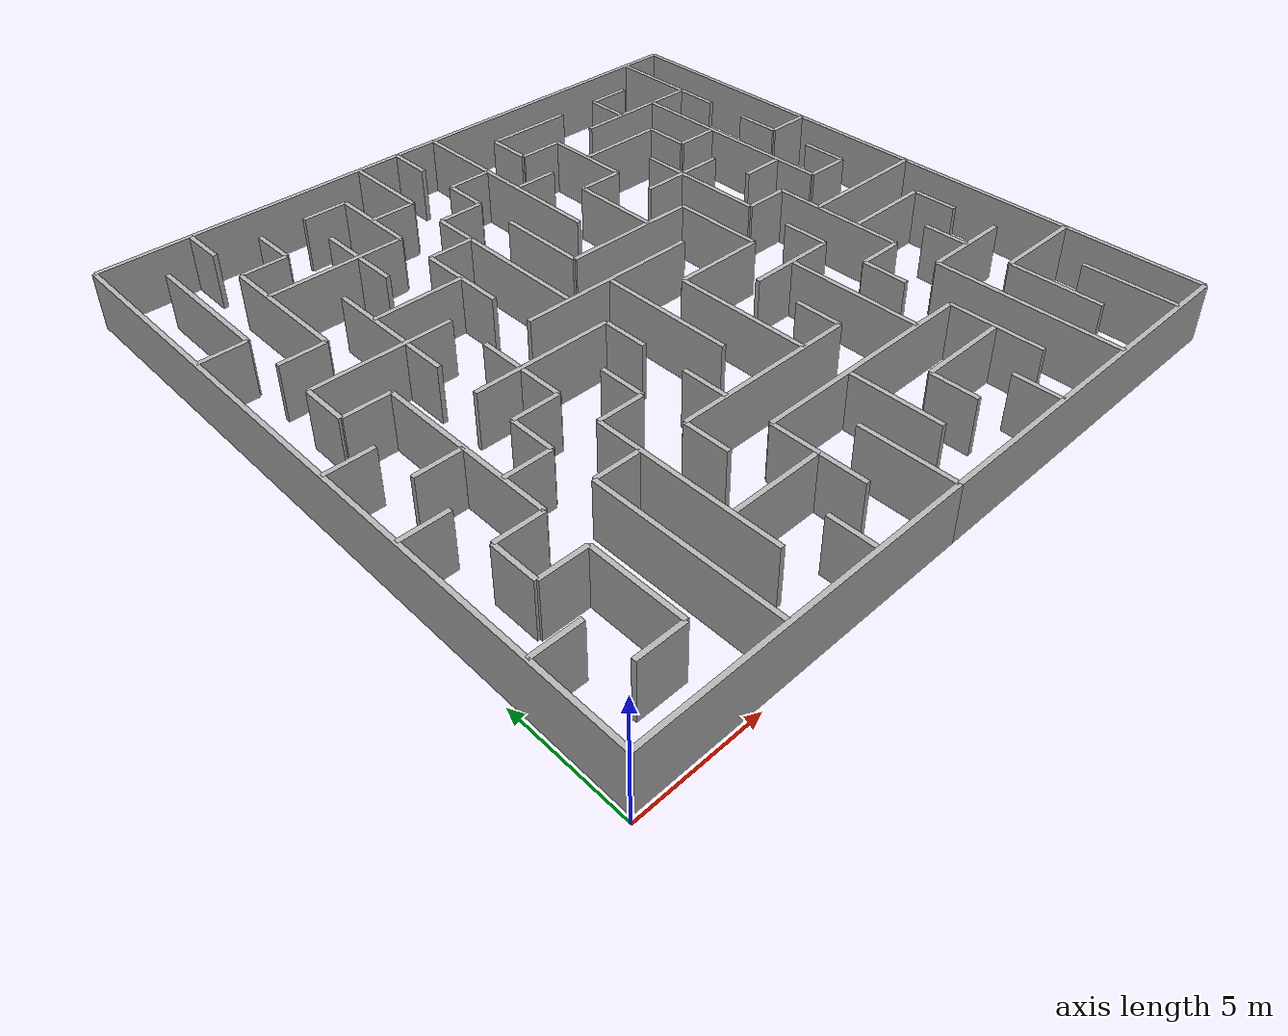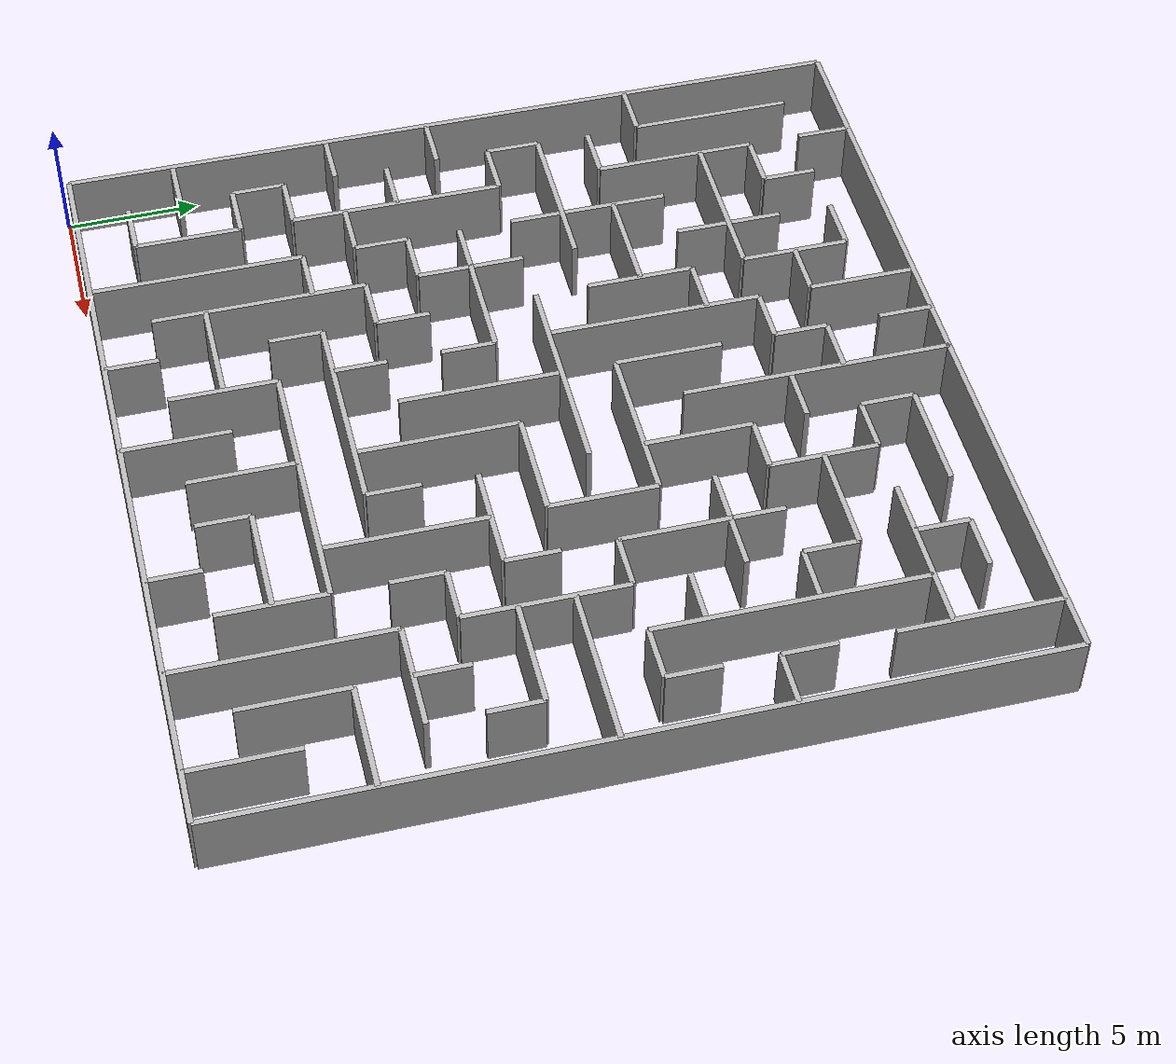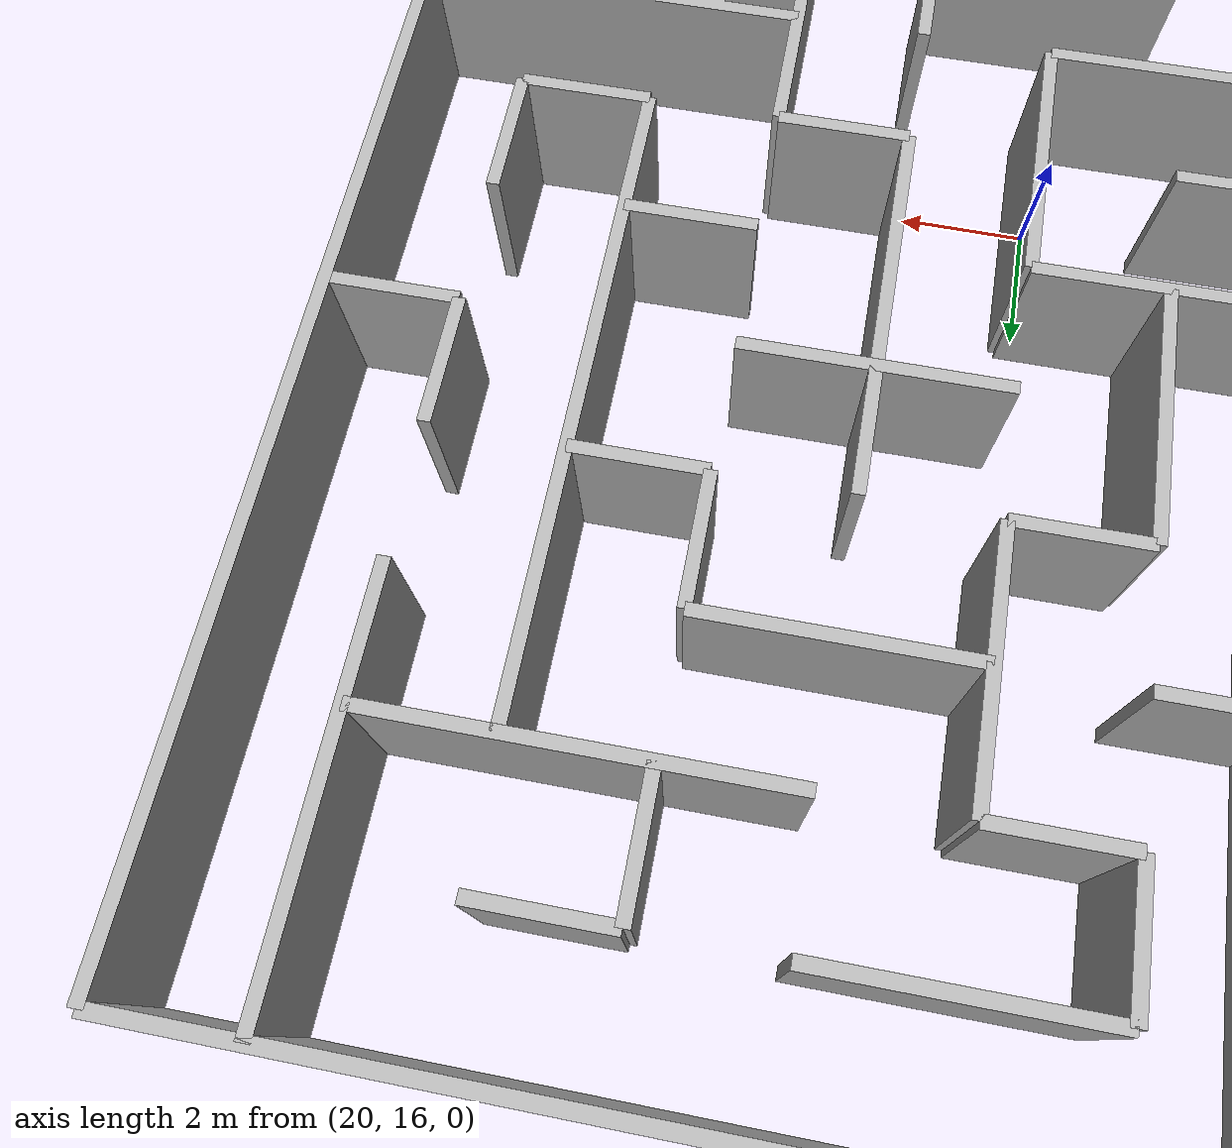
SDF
<?xml version="1.0" ?>
<sdf version="1.6">
  <model name="maze5">
    <static>true</static>
    <link name="wall_0">
      <pose>7.25 0.25 1.25 0 0 0.0</pose>
      <collision name="collision">
        <geometry>
          <box><size>14.0 0.2 2.5</size></box>
        </geometry>
      </collision>
      <visual name="visual">
        <geometry>
          <box><size>14.0 0.2 2.5</size></box>
        </geometry>
        <material>
          <ambient>0.7 0.7 0.7 1</ambient>
          <diffuse>0.7 0.7 0.7 1</diffuse>
        </material>
      </visual>
    </link>
    <link name="wall_1">
      <pose>22.25 0.25 1.25 0 0 0.0</pose>
      <collision name="collision">
        <geometry>
          <box><size>16.0 0.2 2.5</size></box>
        </geometry>
      </collision>
      <visual name="visual">
        <geometry>
          <box><size>16.0 0.2 2.5</size></box>
        </geometry>
        <material>
          <ambient>0.7 0.7 0.7 1</ambient>
          <diffuse>0.7 0.7 0.7 1</diffuse>
        </material>
      </visual>
    </link>
    <link name="wall_2">
      <pose>3.25 2.25 1.25 0 0 0.0</pose>
      <collision name="collision">
        <geometry>
          <box><size>2.0 0.2 2.5</size></box>
        </geometry>
      </collision>
      <visual name="visual">
        <geometry>
          <box><size>2.0 0.2 2.5</size></box>
        </geometry>
        <material>
          <ambient>0.7 0.7 0.7 1</ambient>
          <diffuse>0.7 0.7 0.7 1</diffuse>
        </material>
      </visual>
    </link>
    <link name="wall_3">
      <pose>1.25 4.25 1.25 0 0 0.0</pose>
      <collision name="collision">
        <geometry>
          <box><size>2.0 0.2 2.5</size></box>
        </geometry>
      </collision>
      <visual name="visual">
        <geometry>
          <box><size>2.0 0.2 2.5</size></box>
        </geometry>
        <material>
          <ambient>0.7 0.7 0.7 1</ambient>
          <diffuse>0.7 0.7 0.7 1</diffuse>
        </material>
      </visual>
    </link>
    <link name="wall_4">
      <pose>10.25 4.25 1.25 0 0 0.0</pose>
      <collision name="collision">
        <geometry>
          <box><size>4.0 0.2 2.5</size></box>
        </geometry>
      </collision>
      <visual name="visual">
        <geometry>
          <box><size>4.0 0.2 2.5</size></box>
        </geometry>
        <material>
          <ambient>0.7 0.7 0.7 1</ambient>
          <diffuse>0.7 0.7 0.7 1</diffuse>
        </material>
      </visual>
    </link>
    <link name="wall_5">
      <pose>20.25 4.25 1.25 0 0 0.0</pose>
      <collision name="collision">
        <geometry>
          <box><size>4.0 0.2 2.5</size></box>
        </geometry>
      </collision>
      <visual name="visual">
        <geometry>
          <box><size>4.0 0.2 2.5</size></box>
        </geometry>
        <material>
          <ambient>0.7 0.7 0.7 1</ambient>
          <diffuse>0.7 0.7 0.7 1</diffuse>
        </material>
      </visual>
    </link>
    <link name="wall_6">
      <pose>3.25 6.25 1.25 0 0 0.0</pose>
      <collision name="collision">
        <geometry>
          <box><size>2.0 0.2 2.5</size></box>
        </geometry>
      </collision>
      <visual name="visual">
        <geometry>
          <box><size>2.0 0.2 2.5</size></box>
        </geometry>
        <material>
          <ambient>0.7 0.7 0.7 1</ambient>
          <diffuse>0.7 0.7 0.7 1</diffuse>
        </material>
      </visual>
    </link>
    <link name="wall_7">
      <pose>17.25 6.25 1.25 0 0 0.0</pose>
      <collision name="collision">
        <geometry>
          <box><size>10.0 0.2 2.5</size></box>
        </geometry>
      </collision>
      <visual name="visual">
        <geometry>
          <box><size>10.0 0.2 2.5</size></box>
        </geometry>
        <material>
          <ambient>0.7 0.7 0.7 1</ambient>
          <diffuse>0.7 0.7 0.7 1</diffuse>
        </material>
      </visual>
    </link>
    <link name="wall_8">
      <pose>28.25 6.25 1.25 0 0 0.0</pose>
      <collision name="collision">
        <geometry>
          <box><size>4.0 0.2 2.5</size></box>
        </geometry>
      </collision>
      <visual name="visual">
        <geometry>
          <box><size>4.0 0.2 2.5</size></box>
        </geometry>
        <material>
          <ambient>0.7 0.7 0.7 1</ambient>
          <diffuse>0.7 0.7 0.7 1</diffuse>
        </material>
      </visual>
    </link>
    <link name="wall_9">
      <pose>3.25 8.25 1.25 0 0 0.0</pose>
      <collision name="collision">
        <geometry>
          <box><size>2.0 0.2 2.5</size></box>
        </geometry>
      </collision>
      <visual name="visual">
        <geometry>
          <box><size>2.0 0.2 2.5</size></box>
        </geometry>
        <material>
          <ambient>0.7 0.7 0.7 1</ambient>
          <diffuse>0.7 0.7 0.7 1</diffuse>
        </material>
      </visual>
    </link>
    <link name="wall_10">
      <pose>7.25 8.25 1.25 0 0 0.0</pose>
      <collision name="collision">
        <geometry>
          <box><size>2.0 0.2 2.5</size></box>
        </geometry>
      </collision>
      <visual name="visual">
        <geometry>
          <box><size>2.0 0.2 2.5</size></box>
        </geometry>
        <material>
          <ambient>0.7 0.7 0.7 1</ambient>
          <diffuse>0.7 0.7 0.7 1</diffuse>
        </material>
      </visual>
    </link>
    <link name="wall_11">
      <pose>14.25 8.25 1.25 0 0 0.0</pose>
      <collision name="collision">
        <geometry>
          <box><size>8.0 0.2 2.5</size></box>
        </geometry>
      </collision>
      <visual name="visual">
        <geometry>
          <box><size>8.0 0.2 2.5</size></box>
        </geometry>
        <material>
          <ambient>0.7 0.7 0.7 1</ambient>
          <diffuse>0.7 0.7 0.7 1</diffuse>
        </material>
      </visual>
    </link>
    <link name="wall_12">
      <pose>26.25 8.25 1.25 0 0 0.0</pose>
      <collision name="collision">
        <geometry>
          <box><size>4.0 0.2 2.5</size></box>
        </geometry>
      </collision>
      <visual name="visual">
        <geometry>
          <box><size>4.0 0.2 2.5</size></box>
        </geometry>
        <material>
          <ambient>0.7 0.7 0.7 1</ambient>
          <diffuse>0.7 0.7 0.7 1</diffuse>
        </material>
      </visual>
    </link>
    <link name="wall_13">
      <pose>1.25 10.25 1.25 0 0 0.0</pose>
      <collision name="collision">
        <geometry>
          <box><size>2.0 0.2 2.5</size></box>
        </geometry>
      </collision>
      <visual name="visual">
        <geometry>
          <box><size>2.0 0.2 2.5</size></box>
        </geometry>
        <material>
          <ambient>0.7 0.7 0.7 1</ambient>
          <diffuse>0.7 0.7 0.7 1</diffuse>
        </material>
      </visual>
    </link>
    <link name="wall_14">
      <pose>5.25 10.25 1.25 0 0 0.0</pose>
      <collision name="collision">
        <geometry>
          <box><size>2.0 0.2 2.5</size></box>
        </geometry>
      </collision>
      <visual name="visual">
        <geometry>
          <box><size>2.0 0.2 2.5</size></box>
        </geometry>
        <material>
          <ambient>0.7 0.7 0.7 1</ambient>
          <diffuse>0.7 0.7 0.7 1</diffuse>
        </material>
      </visual>
    </link>
    <link name="wall_15">
      <pose>9.25 10.25 1.25 0 0 0.0</pose>
      <collision name="collision">
        <geometry>
          <box><size>2.0 0.2 2.5</size></box>
        </geometry>
      </collision>
      <visual name="visual">
        <geometry>
          <box><size>2.0 0.2 2.5</size></box>
        </geometry>
        <material>
          <ambient>0.7 0.7 0.7 1</ambient>
          <diffuse>0.7 0.7 0.7 1</diffuse>
        </material>
      </visual>
    </link>
    <link name="wall_16">
      <pose>23.25 10.25 1.25 0 0 0.0</pose>
      <collision name="collision">
        <geometry>
          <box><size>2.0 0.2 2.5</size></box>
        </geometry>
      </collision>
      <visual name="visual">
        <geometry>
          <box><size>2.0 0.2 2.5</size></box>
        </geometry>
        <material>
          <ambient>0.7 0.7 0.7 1</ambient>
          <diffuse>0.7 0.7 0.7 1</diffuse>
        </material>
      </visual>
    </link>
    <link name="wall_17">
      <pose>3.25 12.25 1.25 0 0 0.0</pose>
      <collision name="collision">
        <geometry>
          <box><size>2.0 0.2 2.5</size></box>
        </geometry>
      </collision>
      <visual name="visual">
        <geometry>
          <box><size>2.0 0.2 2.5</size></box>
        </geometry>
        <material>
          <ambient>0.7 0.7 0.7 1</ambient>
          <diffuse>0.7 0.7 0.7 1</diffuse>
        </material>
      </visual>
    </link>
    <link name="wall_18">
      <pose>7.25 12.25 1.25 0 0 0.0</pose>
      <collision name="collision">
        <geometry>
          <box><size>2.0 0.2 2.5</size></box>
        </geometry>
      </collision>
      <visual name="visual">
        <geometry>
          <box><size>2.0 0.2 2.5</size></box>
        </geometry>
        <material>
          <ambient>0.7 0.7 0.7 1</ambient>
          <diffuse>0.7 0.7 0.7 1</diffuse>
        </material>
      </visual>
    </link>
    <link name="wall_19">
      <pose>20.25 12.25 1.25 0 0 0.0</pose>
      <collision name="collision">
        <geometry>
          <box><size>4.0 0.2 2.5</size></box>
        </geometry>
      </collision>
      <visual name="visual">
        <geometry>
          <box><size>4.0 0.2 2.5</size></box>
        </geometry>
        <material>
          <ambient>0.7 0.7 0.7 1</ambient>
          <diffuse>0.7 0.7 0.7 1</diffuse>
        </material>
      </visual>
    </link>
    <link name="wall_20">
      <pose>26.25 12.25 1.25 0 0 0.0</pose>
      <collision name="collision">
        <geometry>
          <box><size>4.0 0.2 2.5</size></box>
        </geometry>
      </collision>
      <visual name="visual">
        <geometry>
          <box><size>4.0 0.2 2.5</size></box>
        </geometry>
        <material>
          <ambient>0.7 0.7 0.7 1</ambient>
          <diffuse>0.7 0.7 0.7 1</diffuse>
        </material>
      </visual>
    </link>
    <link name="wall_21">
      <pose>1.25 14.25 1.25 0 0 0.0</pose>
      <collision name="collision">
        <geometry>
          <box><size>2.0 0.2 2.5</size></box>
        </geometry>
      </collision>
      <visual name="visual">
        <geometry>
          <box><size>2.0 0.2 2.5</size></box>
        </geometry>
        <material>
          <ambient>0.7 0.7 0.7 1</ambient>
          <diffuse>0.7 0.7 0.7 1</diffuse>
        </material>
      </visual>
    </link>
    <link name="wall_22">
      <pose>9.25 14.25 1.25 0 0 0.0</pose>
      <collision name="collision">
        <geometry>
          <box><size>6.0 0.2 2.5</size></box>
        </geometry>
      </collision>
      <visual name="visual">
        <geometry>
          <box><size>6.0 0.2 2.5</size></box>
        </geometry>
        <material>
          <ambient>0.7 0.7 0.7 1</ambient>
          <diffuse>0.7 0.7 0.7 1</diffuse>
        </material>
      </visual>
    </link>
    <link name="wall_23">
      <pose>18.25 14.25 1.25 0 0 0.0</pose>
      <collision name="collision">
        <geometry>
          <box><size>4.0 0.2 2.5</size></box>
        </geometry>
      </collision>
      <visual name="visual">
        <geometry>
          <box><size>4.0 0.2 2.5</size></box>
        </geometry>
        <material>
          <ambient>0.7 0.7 0.7 1</ambient>
          <diffuse>0.7 0.7 0.7 1</diffuse>
        </material>
      </visual>
    </link>
    <link name="wall_24">
      <pose>27.25 14.25 1.25 0 0 0.0</pose>
      <collision name="collision">
        <geometry>
          <box><size>6.0 0.2 2.5</size></box>
        </geometry>
      </collision>
      <visual name="visual">
        <geometry>
          <box><size>6.0 0.2 2.5</size></box>
        </geometry>
        <material>
          <ambient>0.7 0.7 0.7 1</ambient>
          <diffuse>0.7 0.7 0.7 1</diffuse>
        </material>
      </visual>
    </link>
    <link name="wall_25">
      <pose>3.25 16.25 1.25 0 0 0.0</pose>
      <collision name="collision">
        <geometry>
          <box><size>2.0 0.2 2.5</size></box>
        </geometry>
      </collision>
      <visual name="visual">
        <geometry>
          <box><size>2.0 0.2 2.5</size></box>
        </geometry>
        <material>
          <ambient>0.7 0.7 0.7 1</ambient>
          <diffuse>0.7 0.7 0.7 1</diffuse>
        </material>
      </visual>
    </link>
    <link name="wall_26">
      <pose>14.25 16.25 1.25 0 0 0.0</pose>
      <collision name="collision">
        <geometry>
          <box><size>8.0 0.2 2.5</size></box>
        </geometry>
      </collision>
      <visual name="visual">
        <geometry>
          <box><size>8.0 0.2 2.5</size></box>
        </geometry>
        <material>
          <ambient>0.7 0.7 0.7 1</ambient>
          <diffuse>0.7 0.7 0.7 1</diffuse>
        </material>
      </visual>
    </link>
    <link name="wall_27">
      <pose>23.25 16.25 1.25 0 0 0.0</pose>
      <collision name="collision">
        <geometry>
          <box><size>2.0 0.2 2.5</size></box>
        </geometry>
      </collision>
      <visual name="visual">
        <geometry>
          <box><size>2.0 0.2 2.5</size></box>
        </geometry>
        <material>
          <ambient>0.7 0.7 0.7 1</ambient>
          <diffuse>0.7 0.7 0.7 1</diffuse>
        </material>
      </visual>
    </link>
    <link name="wall_28">
      <pose>27.25 16.25 1.25 0 0 0.0</pose>
      <collision name="collision">
        <geometry>
          <box><size>2.0 0.2 2.5</size></box>
        </geometry>
      </collision>
      <visual name="visual">
        <geometry>
          <box><size>2.0 0.2 2.5</size></box>
        </geometry>
        <material>
          <ambient>0.7 0.7 0.7 1</ambient>
          <diffuse>0.7 0.7 0.7 1</diffuse>
        </material>
      </visual>
    </link>
    <link name="wall_29">
      <pose>5.25 18.25 1.25 0 0 0.0</pose>
      <collision name="collision">
        <geometry>
          <box><size>6.0 0.2 2.5</size></box>
        </geometry>
      </collision>
      <visual name="visual">
        <geometry>
          <box><size>6.0 0.2 2.5</size></box>
        </geometry>
        <material>
          <ambient>0.7 0.7 0.7 1</ambient>
          <diffuse>0.7 0.7 0.7 1</diffuse>
        </material>
      </visual>
    </link>
    <link name="wall_30">
      <pose>17.25 18.25 1.25 0 0 0.0</pose>
      <collision name="collision">
        <geometry>
          <box><size>6.0 0.2 2.5</size></box>
        </geometry>
      </collision>
      <visual name="visual">
        <geometry>
          <box><size>6.0 0.2 2.5</size></box>
        </geometry>
        <material>
          <ambient>0.7 0.7 0.7 1</ambient>
          <diffuse>0.7 0.7 0.7 1</diffuse>
        </material>
      </visual>
    </link>
    <link name="wall_31">
      <pose>25.25 18.25 1.25 0 0 0.0</pose>
      <collision name="collision">
        <geometry>
          <box><size>2.0 0.2 2.5</size></box>
        </geometry>
      </collision>
      <visual name="visual">
        <geometry>
          <box><size>2.0 0.2 2.5</size></box>
        </geometry>
        <material>
          <ambient>0.7 0.7 0.7 1</ambient>
          <diffuse>0.7 0.7 0.7 1</diffuse>
        </material>
      </visual>
    </link>
    <link name="wall_32">
      <pose>3.25 20.25 1.25 0 0 0.0</pose>
      <collision name="collision">
        <geometry>
          <box><size>2.0 0.2 2.5</size></box>
        </geometry>
      </collision>
      <visual name="visual">
        <geometry>
          <box><size>2.0 0.2 2.5</size></box>
        </geometry>
        <material>
          <ambient>0.7 0.7 0.7 1</ambient>
          <diffuse>0.7 0.7 0.7 1</diffuse>
        </material>
      </visual>
    </link>
    <link name="wall_33">
      <pose>8.25 20.25 1.25 0 0 0.0</pose>
      <collision name="collision">
        <geometry>
          <box><size>4.0 0.2 2.5</size></box>
        </geometry>
      </collision>
      <visual name="visual">
        <geometry>
          <box><size>4.0 0.2 2.5</size></box>
        </geometry>
        <material>
          <ambient>0.7 0.7 0.7 1</ambient>
          <diffuse>0.7 0.7 0.7 1</diffuse>
        </material>
      </visual>
    </link>
    <link name="wall_34">
      <pose>22.25 20.25 1.25 0 0 0.0</pose>
      <collision name="collision">
        <geometry>
          <box><size>4.0 0.2 2.5</size></box>
        </geometry>
      </collision>
      <visual name="visual">
        <geometry>
          <box><size>4.0 0.2 2.5</size></box>
        </geometry>
        <material>
          <ambient>0.7 0.7 0.7 1</ambient>
          <diffuse>0.7 0.7 0.7 1</diffuse>
        </material>
      </visual>
    </link>
    <link name="wall_35">
      <pose>29.25 20.25 1.25 0 0 0.0</pose>
      <collision name="collision">
        <geometry>
          <box><size>2.0 0.2 2.5</size></box>
        </geometry>
      </collision>
      <visual name="visual">
        <geometry>
          <box><size>2.0 0.2 2.5</size></box>
        </geometry>
        <material>
          <ambient>0.7 0.7 0.7 1</ambient>
          <diffuse>0.7 0.7 0.7 1</diffuse>
        </material>
      </visual>
    </link>
    <link name="wall_36">
      <pose>1.25 22.25 1.25 0 0 0.0</pose>
      <collision name="collision">
        <geometry>
          <box><size>2.0 0.2 2.5</size></box>
        </geometry>
      </collision>
      <visual name="visual">
        <geometry>
          <box><size>2.0 0.2 2.5</size></box>
        </geometry>
        <material>
          <ambient>0.7 0.7 0.7 1</ambient>
          <diffuse>0.7 0.7 0.7 1</diffuse>
        </material>
      </visual>
    </link>
    <link name="wall_37">
      <pose>11.25 22.25 1.25 0 0 0.0</pose>
      <collision name="collision">
        <geometry>
          <box><size>2.0 0.2 2.5</size></box>
        </geometry>
      </collision>
      <visual name="visual">
        <geometry>
          <box><size>2.0 0.2 2.5</size></box>
        </geometry>
        <material>
          <ambient>0.7 0.7 0.7 1</ambient>
          <diffuse>0.7 0.7 0.7 1</diffuse>
        </material>
      </visual>
    </link>
    <link name="wall_38">
      <pose>19.25 22.25 1.25 0 0 0.0</pose>
      <collision name="collision">
        <geometry>
          <box><size>2.0 0.2 2.5</size></box>
        </geometry>
      </collision>
      <visual name="visual">
        <geometry>
          <box><size>2.0 0.2 2.5</size></box>
        </geometry>
        <material>
          <ambient>0.7 0.7 0.7 1</ambient>
          <diffuse>0.7 0.7 0.7 1</diffuse>
        </material>
      </visual>
    </link>
    <link name="wall_39">
      <pose>25.25 22.25 1.25 0 0 0.0</pose>
      <collision name="collision">
        <geometry>
          <box><size>2.0 0.2 2.5</size></box>
        </geometry>
      </collision>
      <visual name="visual">
        <geometry>
          <box><size>2.0 0.2 2.5</size></box>
        </geometry>
        <material>
          <ambient>0.7 0.7 0.7 1</ambient>
          <diffuse>0.7 0.7 0.7 1</diffuse>
        </material>
      </visual>
    </link>
    <link name="wall_40">
      <pose>7.25 24.25 1.25 0 0 0.0</pose>
      <collision name="collision">
        <geometry>
          <box><size>6.0 0.2 2.5</size></box>
        </geometry>
      </collision>
      <visual name="visual">
        <geometry>
          <box><size>6.0 0.2 2.5</size></box>
        </geometry>
        <material>
          <ambient>0.7 0.7 0.7 1</ambient>
          <diffuse>0.7 0.7 0.7 1</diffuse>
        </material>
      </visual>
    </link>
    <link name="wall_41">
      <pose>13.25 24.25 1.25 0 0 0.0</pose>
      <collision name="collision">
        <geometry>
          <box><size>2.0 0.2 2.5</size></box>
        </geometry>
      </collision>
      <visual name="visual">
        <geometry>
          <box><size>2.0 0.2 2.5</size></box>
        </geometry>
        <material>
          <ambient>0.7 0.7 0.7 1</ambient>
          <diffuse>0.7 0.7 0.7 1</diffuse>
        </material>
      </visual>
    </link>
    <link name="wall_42">
      <pose>17.25 24.25 1.25 0 0 0.0</pose>
      <collision name="collision">
        <geometry>
          <box><size>2.0 0.2 2.5</size></box>
        </geometry>
      </collision>
      <visual name="visual">
        <geometry>
          <box><size>2.0 0.2 2.5</size></box>
        </geometry>
        <material>
          <ambient>0.7 0.7 0.7 1</ambient>
          <diffuse>0.7 0.7 0.7 1</diffuse>
        </material>
      </visual>
    </link>
    <link name="wall_43">
      <pose>22.25 24.25 1.25 0 0 0.0</pose>
      <collision name="collision">
        <geometry>
          <box><size>4.0 0.2 2.5</size></box>
        </geometry>
      </collision>
      <visual name="visual">
        <geometry>
          <box><size>4.0 0.2 2.5</size></box>
        </geometry>
        <material>
          <ambient>0.7 0.7 0.7 1</ambient>
          <diffuse>0.7 0.7 0.7 1</diffuse>
        </material>
      </visual>
    </link>
    <link name="wall_44">
      <pose>5.25 26.25 1.25 0 0 0.0</pose>
      <collision name="collision">
        <geometry>
          <box><size>2.0 0.2 2.5</size></box>
        </geometry>
      </collision>
      <visual name="visual">
        <geometry>
          <box><size>2.0 0.2 2.5</size></box>
        </geometry>
        <material>
          <ambient>0.7 0.7 0.7 1</ambient>
          <diffuse>0.7 0.7 0.7 1</diffuse>
        </material>
      </visual>
    </link>
    <link name="wall_45">
      <pose>11.25 26.25 1.25 0 0 0.0</pose>
      <collision name="collision">
        <geometry>
          <box><size>2.0 0.2 2.5</size></box>
        </geometry>
      </collision>
      <visual name="visual">
        <geometry>
          <box><size>2.0 0.2 2.5</size></box>
        </geometry>
        <material>
          <ambient>0.7 0.7 0.7 1</ambient>
          <diffuse>0.7 0.7 0.7 1</diffuse>
        </material>
      </visual>
    </link>
    <link name="wall_46">
      <pose>15.25 26.25 1.25 0 0 0.0</pose>
      <collision name="collision">
        <geometry>
          <box><size>2.0 0.2 2.5</size></box>
        </geometry>
      </collision>
      <visual name="visual">
        <geometry>
          <box><size>2.0 0.2 2.5</size></box>
        </geometry>
        <material>
          <ambient>0.7 0.7 0.7 1</ambient>
          <diffuse>0.7 0.7 0.7 1</diffuse>
        </material>
      </visual>
    </link>
    <link name="wall_47">
      <pose>19.25 26.25 1.25 0 0 0.0</pose>
      <collision name="collision">
        <geometry>
          <box><size>2.0 0.2 2.5</size></box>
        </geometry>
      </collision>
      <visual name="visual">
        <geometry>
          <box><size>2.0 0.2 2.5</size></box>
        </geometry>
        <material>
          <ambient>0.7 0.7 0.7 1</ambient>
          <diffuse>0.7 0.7 0.7 1</diffuse>
        </material>
      </visual>
    </link>
    <link name="wall_48">
      <pose>25.25 26.25 1.25 0 0 0.0</pose>
      <collision name="collision">
        <geometry>
          <box><size>6.0 0.2 2.5</size></box>
        </geometry>
      </collision>
      <visual name="visual">
        <geometry>
          <box><size>6.0 0.2 2.5</size></box>
        </geometry>
        <material>
          <ambient>0.7 0.7 0.7 1</ambient>
          <diffuse>0.7 0.7 0.7 1</diffuse>
        </material>
      </visual>
    </link>
    <link name="wall_49">
      <pose>9.25 28.25 1.25 0 0 0.0</pose>
      <collision name="collision">
        <geometry>
          <box><size>2.0 0.2 2.5</size></box>
        </geometry>
      </collision>
      <visual name="visual">
        <geometry>
          <box><size>2.0 0.2 2.5</size></box>
        </geometry>
        <material>
          <ambient>0.7 0.7 0.7 1</ambient>
          <diffuse>0.7 0.7 0.7 1</diffuse>
        </material>
      </visual>
    </link>
    <link name="wall_50">
      <pose>20.25 28.25 1.25 0 0 0.0</pose>
      <collision name="collision">
        <geometry>
          <box><size>4.0 0.2 2.5</size></box>
        </geometry>
      </collision>
      <visual name="visual">
        <geometry>
          <box><size>4.0 0.2 2.5</size></box>
        </geometry>
        <material>
          <ambient>0.7 0.7 0.7 1</ambient>
          <diffuse>0.7 0.7 0.7 1</diffuse>
        </material>
      </visual>
    </link>
    <link name="wall_51">
      <pose>25.25 28.25 1.25 0 0 0.0</pose>
      <collision name="collision">
        <geometry>
          <box><size>2.0 0.2 2.5</size></box>
        </geometry>
      </collision>
      <visual name="visual">
        <geometry>
          <box><size>2.0 0.2 2.5</size></box>
        </geometry>
        <material>
          <ambient>0.7 0.7 0.7 1</ambient>
          <diffuse>0.7 0.7 0.7 1</diffuse>
        </material>
      </visual>
    </link>
    <link name="wall_52">
      <pose>8.25 30.25 1.25 0 0 0.0</pose>
      <collision name="collision">
        <geometry>
          <box><size>16.0 0.2 2.5</size></box>
        </geometry>
      </collision>
      <visual name="visual">
        <geometry>
          <box><size>16.0 0.2 2.5</size></box>
        </geometry>
        <material>
          <ambient>0.7 0.7 0.7 1</ambient>
          <diffuse>0.7 0.7 0.7 1</diffuse>
        </material>
      </visual>
    </link>
    <link name="wall_53">
      <pose>23.25 30.25 1.25 0 0 0.0</pose>
      <collision name="collision">
        <geometry>
          <box><size>14.0 0.2 2.5</size></box>
        </geometry>
      </collision>
      <visual name="visual">
        <geometry>
          <box><size>14.0 0.2 2.5</size></box>
        </geometry>
        <material>
          <ambient>0.7 0.7 0.7 1</ambient>
          <diffuse>0.7 0.7 0.7 1</diffuse>
        </material>
      </visual>
    </link>
    <link name="wall_54">
      <pose>0.25 15.25 1.25 0 0 1.5707963267948966</pose>
      <collision name="collision">
        <geometry>
          <box><size>30.0 0.2 2.5</size></box>
        </geometry>
      </collision>
      <visual name="visual">
        <geometry>
          <box><size>30.0 0.2 2.5</size></box>
        </geometry>
        <material>
          <ambient>0.7 0.7 0.7 1</ambient>
          <diffuse>0.7 0.7 0.7 1</diffuse>
        </material>
      </visual>
    </link>
    <link name="wall_55">
      <pose>2.25 7.25 1.25 0 0 1.5707963267948966</pose>
      <collision name="collision">
        <geometry>
          <box><size>2.0 0.2 2.5</size></box>
        </geometry>
      </collision>
      <visual name="visual">
        <geometry>
          <box><size>2.0 0.2 2.5</size></box>
        </geometry>
        <material>
          <ambient>0.7 0.7 0.7 1</ambient>
          <diffuse>0.7 0.7 0.7 1</diffuse>
        </material>
      </visual>
    </link>
    <link name="wall_56">
      <pose>2.25 17.25 1.25 0 0 1.5707963267948966</pose>
      <collision name="collision">
        <geometry>
          <box><size>2.0 0.2 2.5</size></box>
        </geometry>
      </collision>
      <visual name="visual">
        <geometry>
          <box><size>2.0 0.2 2.5</size></box>
        </geometry>
        <material>
          <ambient>0.7 0.7 0.7 1</ambient>
          <diffuse>0.7 0.7 0.7 1</diffuse>
        </material>
      </visual>
    </link>
    <link name="wall_57">
      <pose>2.25 25.25 1.25 0 0 1.5707963267948966</pose>
      <collision name="collision">
        <geometry>
          <box><size>6.0 0.2 2.5</size></box>
        </geometry>
      </collision>
      <visual name="visual">
        <geometry>
          <box><size>6.0 0.2 2.5</size></box>
        </geometry>
        <material>
          <ambient>0.7 0.7 0.7 1</ambient>
          <diffuse>0.7 0.7 0.7 1</diffuse>
        </material>
      </visual>
    </link>
    <link name="wall_58">
      <pose>4.25 4.25 1.25 0 0 1.5707963267948966</pose>
      <collision name="collision">
        <geometry>
          <box><size>4.0 0.2 2.5</size></box>
        </geometry>
      </collision>
      <visual name="visual">
        <geometry>
          <box><size>4.0 0.2 2.5</size></box>
        </geometry>
        <material>
          <ambient>0.7 0.7 0.7 1</ambient>
          <diffuse>0.7 0.7 0.7 1</diffuse>
        </material>
      </visual>
    </link>
    <link name="wall_59">
      <pose>4.25 12.25 1.25 0 0 1.5707963267948966</pose>
      <collision name="collision">
        <geometry>
          <box><size>8.0 0.2 2.5</size></box>
        </geometry>
      </collision>
      <visual name="visual">
        <geometry>
          <box><size>8.0 0.2 2.5</size></box>
        </geometry>
        <material>
          <ambient>0.7 0.7 0.7 1</ambient>
          <diffuse>0.7 0.7 0.7 1</diffuse>
        </material>
      </visual>
    </link>
    <link name="wall_60">
      <pose>4.25 23.25 1.25 0 0 1.5707963267948966</pose>
      <collision name="collision">
        <geometry>
          <box><size>6.0 0.2 2.5</size></box>
        </geometry>
      </collision>
      <visual name="visual">
        <geometry>
          <box><size>6.0 0.2 2.5</size></box>
        </geometry>
        <material>
          <ambient>0.7 0.7 0.7 1</ambient>
          <diffuse>0.7 0.7 0.7 1</diffuse>
        </material>
      </visual>
    </link>
    <link name="wall_61">
      <pose>4.25 29.25 1.25 0 0 1.5707963267948966</pose>
      <collision name="collision">
        <geometry>
          <box><size>2.0 0.2 2.5</size></box>
        </geometry>
      </collision>
      <visual name="visual">
        <geometry>
          <box><size>2.0 0.2 2.5</size></box>
        </geometry>
        <material>
          <ambient>0.7 0.7 0.7 1</ambient>
          <diffuse>0.7 0.7 0.7 1</diffuse>
        </material>
      </visual>
    </link>
    <link name="wall_62">
      <pose>6.25 4.25 1.25 0 0 1.5707963267948966</pose>
      <collision name="collision">
        <geometry>
          <box><size>8.0 0.2 2.5</size></box>
        </geometry>
      </collision>
      <visual name="visual">
        <geometry>
          <box><size>8.0 0.2 2.5</size></box>
        </geometry>
        <material>
          <ambient>0.7 0.7 0.7 1</ambient>
          <diffuse>0.7 0.7 0.7 1</diffuse>
        </material>
      </visual>
    </link>
    <link name="wall_63">
      <pose>6.25 11.25 1.25 0 0 1.5707963267948966</pose>
      <collision name="collision">
        <geometry>
          <box><size>2.0 0.2 2.5</size></box>
        </geometry>
      </collision>
      <visual name="visual">
        <geometry>
          <box><size>2.0 0.2 2.5</size></box>
        </geometry>
        <material>
          <ambient>0.7 0.7 0.7 1</ambient>
          <diffuse>0.7 0.7 0.7 1</diffuse>
        </material>
      </visual>
    </link>
    <link name="wall_64">
      <pose>6.25 19.25 1.25 0 0 1.5707963267948966</pose>
      <collision name="collision">
        <geometry>
          <box><size>6.0 0.2 2.5</size></box>
        </geometry>
      </collision>
      <visual name="visual">
        <geometry>
          <box><size>6.0 0.2 2.5</size></box>
        </geometry>
        <material>
          <ambient>0.7 0.7 0.7 1</ambient>
          <diffuse>0.7 0.7 0.7 1</diffuse>
        </material>
      </visual>
    </link>
    <link name="wall_65">
      <pose>6.25 27.25 1.25 0 0 1.5707963267948966</pose>
      <collision name="collision">
        <geometry>
          <box><size>2.0 0.2 2.5</size></box>
        </geometry>
      </collision>
      <visual name="visual">
        <geometry>
          <box><size>2.0 0.2 2.5</size></box>
        </geometry>
        <material>
          <ambient>0.7 0.7 0.7 1</ambient>
          <diffuse>0.7 0.7 0.7 1</diffuse>
        </material>
      </visual>
    </link>
    <link name="wall_66">
      <pose>8.25 6.25 1.25 0 0 1.5707963267948966</pose>
      <collision name="collision">
        <geometry>
          <box><size>8.0 0.2 2.5</size></box>
        </geometry>
      </collision>
      <visual name="visual">
        <geometry>
          <box><size>8.0 0.2 2.5</size></box>
        </geometry>
        <material>
          <ambient>0.7 0.7 0.7 1</ambient>
          <diffuse>0.7 0.7 0.7 1</diffuse>
        </material>
      </visual>
    </link>
    <link name="wall_67">
      <pose>8.25 14.25 1.25 0 0 1.5707963267948966</pose>
      <collision name="collision">
        <geometry>
          <box><size>4.0 0.2 2.5</size></box>
        </geometry>
      </collision>
      <visual name="visual">
        <geometry>
          <box><size>4.0 0.2 2.5</size></box>
        </geometry>
        <material>
          <ambient>0.7 0.7 0.7 1</ambient>
          <diffuse>0.7 0.7 0.7 1</diffuse>
        </material>
      </visual>
    </link>
    <link name="wall_68">
      <pose>8.25 24.25 1.25 0 0 1.5707963267948966</pose>
      <collision name="collision">
        <geometry>
          <box><size>4.0 0.2 2.5</size></box>
        </geometry>
      </collision>
      <visual name="visual">
        <geometry>
          <box><size>4.0 0.2 2.5</size></box>
        </geometry>
        <material>
          <ambient>0.7 0.7 0.7 1</ambient>
          <diffuse>0.7 0.7 0.7 1</diffuse>
        </material>
      </visual>
    </link>
    <link name="wall_69">
      <pose>10.25 1.25 1.25 0 0 1.5707963267948966</pose>
      <collision name="collision">
        <geometry>
          <box><size>2.0 0.2 2.5</size></box>
        </geometry>
      </collision>
      <visual name="visual">
        <geometry>
          <box><size>2.0 0.2 2.5</size></box>
        </geometry>
        <material>
          <ambient>0.7 0.7 0.7 1</ambient>
          <diffuse>0.7 0.7 0.7 1</diffuse>
        </material>
      </visual>
    </link>
    <link name="wall_70">
      <pose>10.25 7.25 1.25 0 0 1.5707963267948966</pose>
      <collision name="collision">
        <geometry>
          <box><size>2.0 0.2 2.5</size></box>
        </geometry>
      </collision>
      <visual name="visual">
        <geometry>
          <box><size>2.0 0.2 2.5</size></box>
        </geometry>
        <material>
          <ambient>0.7 0.7 0.7 1</ambient>
          <diffuse>0.7 0.7 0.7 1</diffuse>
        </material>
      </visual>
    </link>
    <link name="wall_71">
      <pose>10.25 11.25 1.25 0 0 1.5707963267948966</pose>
      <collision name="collision">
        <geometry>
          <box><size>2.0 0.2 2.5</size></box>
        </geometry>
      </collision>
      <visual name="visual">
        <geometry>
          <box><size>2.0 0.2 2.5</size></box>
        </geometry>
        <material>
          <ambient>0.7 0.7 0.7 1</ambient>
          <diffuse>0.7 0.7 0.7 1</diffuse>
        </material>
      </visual>
    </link>
    <link name="wall_72">
      <pose>10.25 20.25 1.25 0 0 1.5707963267948966</pose>
      <collision name="collision">
        <geometry>
          <box><size>4.0 0.2 2.5</size></box>
        </geometry>
      </collision>
      <visual name="visual">
        <geometry>
          <box><size>4.0 0.2 2.5</size></box>
        </geometry>
        <material>
          <ambient>0.7 0.7 0.7 1</ambient>
          <diffuse>0.7 0.7 0.7 1</diffuse>
        </material>
      </visual>
    </link>
    <link name="wall_73">
      <pose>10.25 26.25 1.25 0 0 1.5707963267948966</pose>
      <collision name="collision">
        <geometry>
          <box><size>4.0 0.2 2.5</size></box>
        </geometry>
      </collision>
      <visual name="visual">
        <geometry>
          <box><size>4.0 0.2 2.5</size></box>
        </geometry>
        <material>
          <ambient>0.7 0.7 0.7 1</ambient>
          <diffuse>0.7 0.7 0.7 1</diffuse>
        </material>
      </visual>
    </link>
    <link name="wall_74">
      <pose>12.25 4.25 1.25 0 0 1.5707963267948966</pose>
      <collision name="collision">
        <geometry>
          <box><size>4.0 0.2 2.5</size></box>
        </geometry>
      </collision>
      <visual name="visual">
        <geometry>
          <box><size>4.0 0.2 2.5</size></box>
        </geometry>
        <material>
          <ambient>0.7 0.7 0.7 1</ambient>
          <diffuse>0.7 0.7 0.7 1</diffuse>
        </material>
      </visual>
    </link>
    <link name="wall_75">
      <pose>12.25 9.25 1.25 0 0 1.5707963267948966</pose>
      <collision name="collision">
        <geometry>
          <box><size>2.0 0.2 2.5</size></box>
        </geometry>
      </collision>
      <visual name="visual">
        <geometry>
          <box><size>2.0 0.2 2.5</size></box>
        </geometry>
        <material>
          <ambient>0.7 0.7 0.7 1</ambient>
          <diffuse>0.7 0.7 0.7 1</diffuse>
        </material>
      </visual>
    </link>
    <link name="wall_76">
      <pose>12.25 13.25 1.25 0 0 1.5707963267948966</pose>
      <collision name="collision">
        <geometry>
          <box><size>2.0 0.2 2.5</size></box>
        </geometry>
      </collision>
      <visual name="visual">
        <geometry>
          <box><size>2.0 0.2 2.5</size></box>
        </geometry>
        <material>
          <ambient>0.7 0.7 0.7 1</ambient>
          <diffuse>0.7 0.7 0.7 1</diffuse>
        </material>
      </visual>
    </link>
    <link name="wall_77">
      <pose>12.25 20.25 1.25 0 0 1.5707963267948966</pose>
      <collision name="collision">
        <geometry>
          <box><size>8.0 0.2 2.5</size></box>
        </geometry>
      </collision>
      <visual name="visual">
        <geometry>
          <box><size>8.0 0.2 2.5</size></box>
        </geometry>
        <material>
          <ambient>0.7 0.7 0.7 1</ambient>
          <diffuse>0.7 0.7 0.7 1</diffuse>
        </material>
      </visual>
    </link>
    <link name="wall_78">
      <pose>12.25 28.25 1.25 0 0 1.5707963267948966</pose>
      <collision name="collision">
        <geometry>
          <box><size>4.0 0.2 2.5</size></box>
        </geometry>
      </collision>
      <visual name="visual">
        <geometry>
          <box><size>4.0 0.2 2.5</size></box>
        </geometry>
        <material>
          <ambient>0.7 0.7 0.7 1</ambient>
          <diffuse>0.7 0.7 0.7 1</diffuse>
        </material>
      </visual>
    </link>
    <link name="wall_79">
      <pose>14.25 2.25 1.25 0 0 1.5707963267948966</pose>
      <collision name="collision">
        <geometry>
          <box><size>4.0 0.2 2.5</size></box>
        </geometry>
      </collision>
      <visual name="visual">
        <geometry>
          <box><size>4.0 0.2 2.5</size></box>
        </geometry>
        <material>
          <ambient>0.7 0.7 0.7 1</ambient>
          <diffuse>0.7 0.7 0.7 1</diffuse>
        </material>
      </visual>
    </link>
    <link name="wall_80">
      <pose>14.25 13.25 1.25 0 0 1.5707963267948966</pose>
      <collision name="collision">
        <geometry>
          <box><size>6.0 0.2 2.5</size></box>
        </geometry>
      </collision>
      <visual name="visual">
        <geometry>
          <box><size>6.0 0.2 2.5</size></box>
        </geometry>
        <material>
          <ambient>0.7 0.7 0.7 1</ambient>
          <diffuse>0.7 0.7 0.7 1</diffuse>
        </material>
      </visual>
    </link>
    <link name="wall_81">
      <pose>14.25 20.25 1.25 0 0 1.5707963267948966</pose>
      <collision name="collision">
        <geometry>
          <box><size>4.0 0.2 2.5</size></box>
        </geometry>
      </collision>
      <visual name="visual">
        <geometry>
          <box><size>4.0 0.2 2.5</size></box>
        </geometry>
        <material>
          <ambient>0.7 0.7 0.7 1</ambient>
          <diffuse>0.7 0.7 0.7 1</diffuse>
        </material>
      </visual>
    </link>
    <link name="wall_82">
      <pose>14.25 25.25 1.25 0 0 1.5707963267948966</pose>
      <collision name="collision">
        <geometry>
          <box><size>2.0 0.2 2.5</size></box>
        </geometry>
      </collision>
      <visual name="visual">
        <geometry>
          <box><size>2.0 0.2 2.5</size></box>
        </geometry>
        <material>
          <ambient>0.7 0.7 0.7 1</ambient>
          <diffuse>0.7 0.7 0.7 1</diffuse>
        </material>
      </visual>
    </link>
    <link name="wall_83">
      <pose>14.25 29.25 1.25 0 0 1.5707963267948966</pose>
      <collision name="collision">
        <geometry>
          <box><size>2.0 0.2 2.5</size></box>
        </geometry>
      </collision>
      <visual name="visual">
        <geometry>
          <box><size>2.0 0.2 2.5</size></box>
        </geometry>
        <material>
          <ambient>0.7 0.7 0.7 1</ambient>
          <diffuse>0.7 0.7 0.7 1</diffuse>
        </material>
      </visual>
    </link>
    <link name="wall_84">
      <pose>16.25 4.25 1.25 0 0 1.5707963267948966</pose>
      <collision name="collision">
        <geometry>
          <box><size>4.0 0.2 2.5</size></box>
        </geometry>
      </collision>
      <visual name="visual">
        <geometry>
          <box><size>4.0 0.2 2.5</size></box>
        </geometry>
        <material>
          <ambient>0.7 0.7 0.7 1</ambient>
          <diffuse>0.7 0.7 0.7 1</diffuse>
        </material>
      </visual>
    </link>
    <link name="wall_85">
      <pose>16.25 11.25 1.25 0 0 1.5707963267948966</pose>
      <collision name="collision">
        <geometry>
          <box><size>6.0 0.2 2.5</size></box>
        </geometry>
      </collision>
      <visual name="visual">
        <geometry>
          <box><size>6.0 0.2 2.5</size></box>
        </geometry>
        <material>
          <ambient>0.7 0.7 0.7 1</ambient>
          <diffuse>0.7 0.7 0.7 1</diffuse>
        </material>
      </visual>
    </link>
    <link name="wall_86">
      <pose>16.25 25.25 1.25 0 0 1.5707963267948966</pose>
      <collision name="collision">
        <geometry>
          <box><size>10.0 0.2 2.5</size></box>
        </geometry>
      </collision>
      <visual name="visual">
        <geometry>
          <box><size>10.0 0.2 2.5</size></box>
        </geometry>
        <material>
          <ambient>0.7 0.7 0.7 1</ambient>
          <diffuse>0.7 0.7 0.7 1</diffuse>
        </material>
      </visual>
    </link>
    <link name="wall_87">
      <pose>18.25 3.25 1.25 0 0 1.5707963267948966</pose>
      <collision name="collision">
        <geometry>
          <box><size>2.0 0.2 2.5</size></box>
        </geometry>
      </collision>
      <visual name="visual">
        <geometry>
          <box><size>2.0 0.2 2.5</size></box>
        </geometry>
        <material>
          <ambient>0.7 0.7 0.7 1</ambient>
          <diffuse>0.7 0.7 0.7 1</diffuse>
        </material>
      </visual>
    </link>
    <link name="wall_88">
      <pose>18.25 9.25 1.25 0 0 1.5707963267948966</pose>
      <collision name="collision">
        <geometry>
          <box><size>2.0 0.2 2.5</size></box>
        </geometry>
      </collision>
      <visual name="visual">
        <geometry>
          <box><size>2.0 0.2 2.5</size></box>
        </geometry>
        <material>
          <ambient>0.7 0.7 0.7 1</ambient>
          <diffuse>0.7 0.7 0.7 1</diffuse>
        </material>
      </visual>
    </link>
    <link name="wall_89">
      <pose>18.25 20.25 1.25 0 0 1.5707963267948966</pose>
      <collision name="collision">
        <geometry>
          <box><size>4.0 0.2 2.5</size></box>
        </geometry>
      </collision>
      <visual name="visual">
        <geometry>
          <box><size>4.0 0.2 2.5</size></box>
        </geometry>
        <material>
          <ambient>0.7 0.7 0.7 1</ambient>
          <diffuse>0.7 0.7 0.7 1</diffuse>
        </material>
      </visual>
    </link>
    <link name="wall_90">
      <pose>18.25 27.25 1.25 0 0 1.5707963267948966</pose>
      <collision name="collision">
        <geometry>
          <box><size>2.0 0.2 2.5</size></box>
        </geometry>
      </collision>
      <visual name="visual">
        <geometry>
          <box><size>2.0 0.2 2.5</size></box>
        </geometry>
        <material>
          <ambient>0.7 0.7 0.7 1</ambient>
          <diffuse>0.7 0.7 0.7 1</diffuse>
        </material>
      </visual>
    </link>
    <link name="wall_91">
      <pose>20.25 1.25 1.25 0 0 1.5707963267948966</pose>
      <collision name="collision">
        <geometry>
          <box><size>2.0 0.2 2.5</size></box>
        </geometry>
      </collision>
      <visual name="visual">
        <geometry>
          <box><size>2.0 0.2 2.5</size></box>
        </geometry>
        <material>
          <ambient>0.7 0.7 0.7 1</ambient>
          <diffuse>0.7 0.7 0.7 1</diffuse>
        </material>
      </visual>
    </link>
    <link name="wall_92">
      <pose>20.25 9.25 1.25 0 0 1.5707963267948966</pose>
      <collision name="collision">
        <geometry>
          <box><size>6.0 0.2 2.5</size></box>
        </geometry>
      </collision>
      <visual name="visual">
        <geometry>
          <box><size>6.0 0.2 2.5</size></box>
        </geometry>
        <material>
          <ambient>0.7 0.7 0.7 1</ambient>
          <diffuse>0.7 0.7 0.7 1</diffuse>
        </material>
      </visual>
    </link>
    <link name="wall_93">
      <pose>20.25 16.25 1.25 0 0 1.5707963267948966</pose>
      <collision name="collision">
        <geometry>
          <box><size>4.0 0.2 2.5</size></box>
        </geometry>
      </collision>
      <visual name="visual">
        <geometry>
          <box><size>4.0 0.2 2.5</size></box>
        </geometry>
        <material>
          <ambient>0.7 0.7 0.7 1</ambient>
          <diffuse>0.7 0.7 0.7 1</diffuse>
        </material>
      </visual>
    </link>
    <link name="wall_94">
      <pose>20.25 24.25 1.25 0 0 1.5707963267948966</pose>
      <collision name="collision">
        <geometry>
          <box><size>4.0 0.2 2.5</size></box>
        </geometry>
      </collision>
      <visual name="visual">
        <geometry>
          <box><size>4.0 0.2 2.5</size></box>
        </geometry>
        <material>
          <ambient>0.7 0.7 0.7 1</ambient>
          <diffuse>0.7 0.7 0.7 1</diffuse>
        </material>
      </visual>
    </link>
    <link name="wall_95">
      <pose>22.25 4.25 1.25 0 0 1.5707963267948966</pose>
      <collision name="collision">
        <geometry>
          <box><size>4.0 0.2 2.5</size></box>
        </geometry>
      </collision>
      <visual name="visual">
        <geometry>
          <box><size>4.0 0.2 2.5</size></box>
        </geometry>
        <material>
          <ambient>0.7 0.7 0.7 1</ambient>
          <diffuse>0.7 0.7 0.7 1</diffuse>
        </material>
      </visual>
    </link>
    <link name="wall_96">
      <pose>22.25 9.25 1.25 0 0 1.5707963267948966</pose>
      <collision name="collision">
        <geometry>
          <box><size>2.0 0.2 2.5</size></box>
        </geometry>
      </collision>
      <visual name="visual">
        <geometry>
          <box><size>2.0 0.2 2.5</size></box>
        </geometry>
        <material>
          <ambient>0.7 0.7 0.7 1</ambient>
          <diffuse>0.7 0.7 0.7 1</diffuse>
        </material>
      </visual>
    </link>
    <link name="wall_97">
      <pose>22.25 13.25 1.25 0 0 1.5707963267948966</pose>
      <collision name="collision">
        <geometry>
          <box><size>2.0 0.2 2.5</size></box>
        </geometry>
      </collision>
      <visual name="visual">
        <geometry>
          <box><size>2.0 0.2 2.5</size></box>
        </geometry>
        <material>
          <ambient>0.7 0.7 0.7 1</ambient>
          <diffuse>0.7 0.7 0.7 1</diffuse>
        </material>
      </visual>
    </link>
    <link name="wall_98">
      <pose>22.25 19.25 1.25 0 0 1.5707963267948966</pose>
      <collision name="collision">
        <geometry>
          <box><size>6.0 0.2 2.5</size></box>
        </geometry>
      </collision>
      <visual name="visual">
        <geometry>
          <box><size>6.0 0.2 2.5</size></box>
        </geometry>
        <material>
          <ambient>0.7 0.7 0.7 1</ambient>
          <diffuse>0.7 0.7 0.7 1</diffuse>
        </material>
      </visual>
    </link>
    <link name="wall_99">
      <pose>24.25 4.25 1.25 0 0 1.5707963267948966</pose>
      <collision name="collision">
        <geometry>
          <box><size>8.0 0.2 2.5</size></box>
        </geometry>
      </collision>
      <visual name="visual">
        <geometry>
          <box><size>8.0 0.2 2.5</size></box>
        </geometry>
        <material>
          <ambient>0.7 0.7 0.7 1</ambient>
          <diffuse>0.7 0.7 0.7 1</diffuse>
        </material>
      </visual>
    </link>
    <link name="wall_100">
      <pose>24.25 13.25 1.25 0 0 1.5707963267948966</pose>
      <collision name="collision">
        <geometry>
          <box><size>6.0 0.2 2.5</size></box>
        </geometry>
      </collision>
      <visual name="visual">
        <geometry>
          <box><size>6.0 0.2 2.5</size></box>
        </geometry>
        <material>
          <ambient>0.7 0.7 0.7 1</ambient>
          <diffuse>0.7 0.7 0.7 1</diffuse>
        </material>
      </visual>
    </link>
    <link name="wall_101">
      <pose>24.25 23.25 1.25 0 0 1.5707963267948966</pose>
      <collision name="collision">
        <geometry>
          <box><size>2.0 0.2 2.5</size></box>
        </geometry>
      </collision>
      <visual name="visual">
        <geometry>
          <box><size>2.0 0.2 2.5</size></box>
        </geometry>
        <material>
          <ambient>0.7 0.7 0.7 1</ambient>
          <diffuse>0.7 0.7 0.7 1</diffuse>
        </material>
      </visual>
    </link>
    <link name="wall_102">
      <pose>24.25 27.25 1.25 0 0 1.5707963267948966</pose>
      <collision name="collision">
        <geometry>
          <box><size>2.0 0.2 2.5</size></box>
        </geometry>
      </collision>
      <visual name="visual">
        <geometry>
          <box><size>2.0 0.2 2.5</size></box>
        </geometry>
        <material>
          <ambient>0.7 0.7 0.7 1</ambient>
          <diffuse>0.7 0.7 0.7 1</diffuse>
        </material>
      </visual>
    </link>
    <link name="wall_103">
      <pose>26.25 4.25 1.25 0 0 1.5707963267948966</pose>
      <collision name="collision">
        <geometry>
          <box><size>4.0 0.2 2.5</size></box>
        </geometry>
      </collision>
      <visual name="visual">
        <geometry>
          <box><size>4.0 0.2 2.5</size></box>
        </geometry>
        <material>
          <ambient>0.7 0.7 0.7 1</ambient>
          <diffuse>0.7 0.7 0.7 1</diffuse>
        </material>
      </visual>
    </link>
    <link name="wall_104">
      <pose>26.25 9.25 1.25 0 0 1.5707963267948966</pose>
      <collision name="collision">
        <geometry>
          <box><size>2.0 0.2 2.5</size></box>
        </geometry>
      </collision>
      <visual name="visual">
        <geometry>
          <box><size>2.0 0.2 2.5</size></box>
        </geometry>
        <material>
          <ambient>0.7 0.7 0.7 1</ambient>
          <diffuse>0.7 0.7 0.7 1</diffuse>
        </material>
      </visual>
    </link>
    <link name="wall_105">
      <pose>26.25 21.25 1.25 0 0 1.5707963267948966</pose>
      <collision name="collision">
        <geometry>
          <box><size>10.0 0.2 2.5</size></box>
        </geometry>
      </collision>
      <visual name="visual">
        <geometry>
          <box><size>10.0 0.2 2.5</size></box>
        </geometry>
        <material>
          <ambient>0.7 0.7 0.7 1</ambient>
          <diffuse>0.7 0.7 0.7 1</diffuse>
        </material>
      </visual>
    </link>
    <link name="wall_106">
      <pose>28.25 2.25 1.25 0 0 1.5707963267948966</pose>
      <collision name="collision">
        <geometry>
          <box><size>4.0 0.2 2.5</size></box>
        </geometry>
      </collision>
      <visual name="visual">
        <geometry>
          <box><size>4.0 0.2 2.5</size></box>
        </geometry>
        <material>
          <ambient>0.7 0.7 0.7 1</ambient>
          <diffuse>0.7 0.7 0.7 1</diffuse>
        </material>
      </visual>
    </link>
    <link name="wall_107">
      <pose>28.25 11.25 1.25 0 0 1.5707963267948966</pose>
      <collision name="collision">
        <geometry>
          <box><size>2.0 0.2 2.5</size></box>
        </geometry>
      </collision>
      <visual name="visual">
        <geometry>
          <box><size>2.0 0.2 2.5</size></box>
        </geometry>
        <material>
          <ambient>0.7 0.7 0.7 1</ambient>
          <diffuse>0.7 0.7 0.7 1</diffuse>
        </material>
      </visual>
    </link>
    <link name="wall_108">
      <pose>28.25 17.25 1.25 0 0 1.5707963267948966</pose>
      <collision name="collision">
        <geometry>
          <box><size>2.0 0.2 2.5</size></box>
        </geometry>
      </collision>
      <visual name="visual">
        <geometry>
          <box><size>2.0 0.2 2.5</size></box>
        </geometry>
        <material>
          <ambient>0.7 0.7 0.7 1</ambient>
          <diffuse>0.7 0.7 0.7 1</diffuse>
        </material>
      </visual>
    </link>
    <link name="wall_109">
      <pose>28.25 21.25 1.25 0 0 1.5707963267948966</pose>
      <collision name="collision">
        <geometry>
          <box><size>2.0 0.2 2.5</size></box>
        </geometry>
      </collision>
      <visual name="visual">
        <geometry>
          <box><size>2.0 0.2 2.5</size></box>
        </geometry>
        <material>
          <ambient>0.7 0.7 0.7 1</ambient>
          <diffuse>0.7 0.7 0.7 1</diffuse>
        </material>
      </visual>
    </link>
    <link name="wall_110">
      <pose>28.25 27.25 1.25 0 0 1.5707963267948966</pose>
      <collision name="collision">
        <geometry>
          <box><size>6.0 0.2 2.5</size></box>
        </geometry>
      </collision>
      <visual name="visual">
        <geometry>
          <box><size>6.0 0.2 2.5</size></box>
        </geometry>
        <material>
          <ambient>0.7 0.7 0.7 1</ambient>
          <diffuse>0.7 0.7 0.7 1</diffuse>
        </material>
      </visual>
    </link>
    <link name="wall_111">
      <pose>30.25 15.25 1.25 0 0 1.5707963267948966</pose>
      <collision name="collision">
        <geometry>
          <box><size>30.0 0.2 2.5</size></box>
        </geometry>
      </collision>
      <visual name="visual">
        <geometry>
          <box><size>30.0 0.2 2.5</size></box>
        </geometry>
        <material>
          <ambient>0.7 0.7 0.7 1</ambient>
          <diffuse>0.7 0.7 0.7 1</diffuse>
        </material>
      </visual>
    </link>
  </model>
</sdf>
